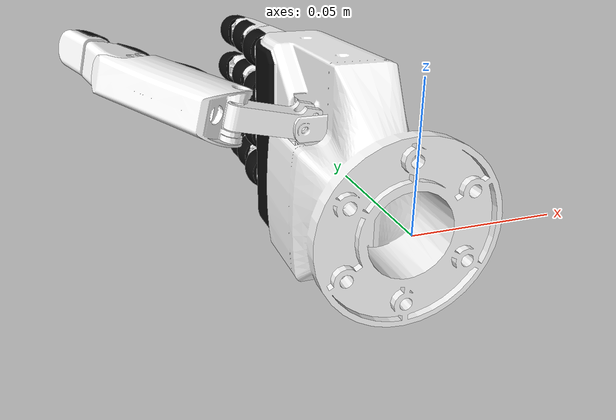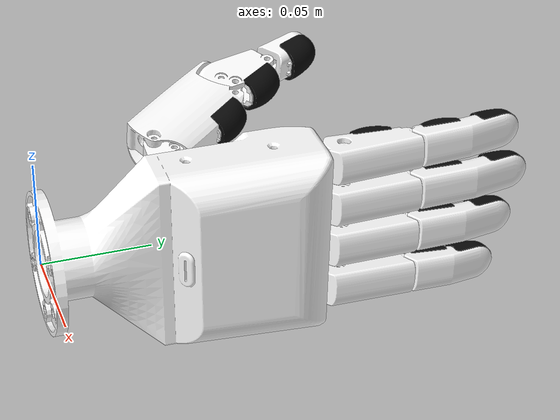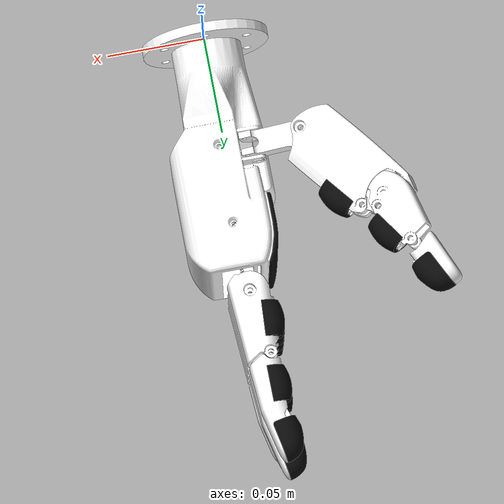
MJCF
<?xml version="1.0" encoding="utf-8"?>
<mujoco model="V3_Hand_Adaptive_Underactuated">
  <compiler angle="radian" meshdir="./" autolimits="true" />
  <option timestep="0.001" iterations="100" solver="Newton"
    cone="elliptic" gravity="0 0 -9.81" />

  <default>
    <joint limited="true" damping="0.002" armature="0.00002"
      frictionloss="0.0002" springref="0" />
    <geom contype="0" conaffinity="0" density="0" />
    <default class="visualgeom">
      <geom contype="0" conaffinity="0" group="1" density="0" />
    </default>
    <default class="padgeom">
      <!-- Bit 1 receives task objects; bit 2 enables collision between skins. -->
      <geom contype="2" conaffinity="3" group="2" density="0" condim="4"
        friction="1.3 0.02 0.0002" solref="0.01 1" priority="1"
        solimp="0.9 0.95 0.001 0.5 2" />
    </default>
  </default>

  <asset>
    <mesh name="v3_base_link" content_type="model/stl" file="meshes/v3_base_link.STL" />

    <mesh name="finger_first_0_p" content_type="model/stl" file="meshes/finger_first_0_p.STL" />
    <mesh name="finger_second_0_p" content_type="model/stl" file="meshes/finger_second_0_p.STL" />
    <mesh name="skin_0_0_p" content_type="model/stl" file="meshes/skin_0_0_p.STL" />
    <mesh name="skin_0_1_p" content_type="model/stl" file="meshes/skin_0_1_p.STL" />
    <mesh name="skin_0_2_p" content_type="model/stl" file="meshes/skin_0_2_p.STL" />

    <mesh name="finger_first_1_p" content_type="model/stl" file="meshes/finger_first_1_p.STL" />
    <mesh name="finger_second_1_p" content_type="model/stl" file="meshes/finger_second_1_p.STL" />
    <mesh name="skin_1_0_p" content_type="model/stl" file="meshes/skin_1_0_p.STL" />
    <mesh name="skin_1_1_p" content_type="model/stl" file="meshes/skin_1_1_p.STL" />
    <mesh name="skin_1_2_p" content_type="model/stl" file="meshes/skin_1_2_p.STL" />

    <mesh name="finger_first_2_p" content_type="model/stl" file="meshes/finger_first_2_p.STL" />
    <mesh name="finger_second_2_p" content_type="model/stl" file="meshes/finger_second_2_p.STL" />
    <mesh name="skin_2_0_p" content_type="model/stl" file="meshes/skin_2_0_p.STL" />
    <mesh name="skin_2_1_p" content_type="model/stl" file="meshes/skin_2_1_p.STL" />
    <mesh name="skin_2_2_p" content_type="model/stl" file="meshes/skin_2_2_p.STL" />

    <mesh name="finger_first_3_p" content_type="model/stl" file="meshes/finger_first_3_p.STL" />
    <mesh name="finger_second_3_p" content_type="model/stl" file="meshes/finger_second_3_p.STL" />
    <mesh name="skin_3_0_p" content_type="model/stl" file="meshes/skin_3_0_p.STL" />
    <mesh name="skin_3_1_p" content_type="model/stl" file="meshes/skin_3_1_p.STL" />
    <mesh name="skin_3_2_p" content_type="model/stl" file="meshes/skin_3_2_p.STL" />

    <mesh name="thumb_rotate_p" content_type="model/stl" file="meshes/thumb_rotate_p.STL" />
    <mesh name="thumb_first_p" content_type="model/stl" file="meshes/thumb_first_p.STL" />
    <mesh name="thumb_second_p" content_type="model/stl" file="meshes/thumb_second_p.STL" />
    <mesh name="thumb_third_p" content_type="model/stl" file="meshes/thumb_third_p.STL" />
    <mesh name="skin_4_0_p" content_type="model/stl" file="meshes/skin_4_0_p.STL" />
    <mesh name="skin_4_1_p" content_type="model/stl" file="meshes/skin_4_1_p.STL" />
    <mesh name="skin_4_2_p" content_type="model/stl" file="meshes/skin_4_2_p.STL" />
    <mesh name="skin_palm_p" content_type="model/stl" file="meshes/skin_palm_p.STL" />
  </asset>

  <worldbody>
    <body name="hand_root" pos="0 0 0" quat="1 0 0 0">
      <geom name="v3_base_link" class="visualgeom" type="mesh"
        mesh="v3_base_link" rgba="1 1 1 1" />
      <geom name="skin_palm_p" class="padgeom" type="mesh"
        pos="-0.01544 0.11121 -0.003" quat="0.000796327 1 0 0"
        mesh="skin_palm_p" rgba="0.04 0.04 0.04 1" />

      <body name="finger_first_0_p" pos="0.002 0.13804 -0.0350749" gravcomp="1"
        quat="0.0214958 0.713766 -0.699737 0.0210733">
        <inertial pos="-0.01153 -0.00242854 -0.00136339"
          quat="0.602872 0.367023 0.67964 0.199822" mass="0.0156128"
          diaginertia="3.07158e-06 2.71909e-06 1.37814e-06" />
        <joint name="finger_first_0_j" axis="0 0 -1" range="-0.08 1.60"
          stiffness="0.030" />
        <geom name="finger_first_0_p" class="visualgeom" type="mesh"
          mesh="finger_first_0_p" rgba="1 1 1 1" />
        <geom name="skin_0_0_p" class="padgeom" type="mesh"
          pos="-0.0157378 0.0119851 0.0001"
          quat="-0.467921 -0.506491 0.493424 -0.530141"
          mesh="skin_0_0_p" rgba="0.04 0.04 0.04 1" />
        <body name="finger_second_0_p" pos="-0.0318983 0.00389251 0" gravcomp="1">
          <inertial pos="-0.0171504 -0.00388346 -0.00482794"
            quat="0.235679 0.688576 0.57471 0.374201" mass="0.0177553"
            diaginertia="5.43551e-06 4.30941e-06 1.69387e-06" />
          <joint name="finger_second_0_j" axis="0 0 -1" range="-0.08 1.75"
            stiffness="0.028" />
          <geom name="finger_second_0_p" class="visualgeom" type="mesh"
            mesh="finger_second_0_p" rgba="1 1 1 1" />
          <geom name="skin_0_1_p" class="padgeom" type="mesh"
            pos="-0.0140028 0.00423085 0.0001"
            quat="-0.476897 -0.494017 0.505912 -0.522082"
            mesh="skin_0_1_p" rgba="0.04 0.04 0.04 1" />
          <geom name="skin_0_2_p" class="padgeom" type="mesh"
            pos="-0.0351717 0.00347781 0.0001"
            quat="-0.462885 -0.51276 0.486905 -0.534545"
            mesh="skin_0_2_p" rgba="0.04 0.04 0.04 1" />
        </body>
      </body>

      <body name="finger_first_1_p" pos="0.002 0.13913 -0.0133252" gravcomp="1"
        quat="0.0143317 0.713946 -0.699913 0.01405">
        <inertial pos="-0.0115079 -0.0024292 -0.00136339"
          quat="0.60245 0.367689 0.679947 0.198826" mass="0.0156128"
          diaginertia="3.07946e-06 2.72925e-06 1.37585e-06" />
        <joint name="finger_first_1_j" axis="0 0 -1" range="-0.08 1.60"
          stiffness="0.030" />
        <geom name="finger_first_1_p" class="visualgeom" type="mesh"
          mesh="finger_first_1_p" rgba="1 1 1 1" />
        <geom name="skin_1_0_p" class="padgeom" type="mesh"
          pos="-0.0157378 0.0119851 0.0001"
          quat="-0.472252 -0.510519 0.489255 -0.526287"
          mesh="skin_1_0_p" rgba="0.04 0.04 0.04 1" />
        <body name="finger_second_1_p" pos="-0.0318983 0.00389251 0" gravcomp="1">
          <inertial pos="-0.0209974 -0.00331111 -0.00499057"
            quat="0.267723 0.685624 0.567941 0.368358" mass="0.0211046"
            diaginertia="8.42322e-06 6.44228e-06 2.64786e-06" />
          <joint name="finger_second_1_j" axis="0 0 -1" range="-0.08 1.75"
            stiffness="0.028" />
          <geom name="finger_second_1_p" class="visualgeom" type="mesh"
            mesh="finger_second_1_p" rgba="1 1 1 1" />
          <geom name="skin_1_1_p" class="padgeom" type="mesh"
            pos="-0.015911 0.0047591 0.0001"
            quat="-0.486323 -0.492747 0.50715 -0.513313"
            mesh="skin_1_1_p" rgba="0.04 0.04 0.04 1" />
          <geom name="skin_1_2_p" class="padgeom" type="mesh"
            pos="-0.0429721 0.00510208 0.0001"
            quat="-0.471191 -0.511737 0.487981 -0.527237"
            mesh="skin_1_2_p" rgba="0.04 0.04 0.04 1" />
        </body>
      </body>

      <body name="finger_first_2_p" pos="0.002 0.13978 0.008442" gravcomp="1"
        quat="0.0071639 0.714069 -0.700004 0.00702743">
        <inertial pos="-0.0114859 -0.00242952 -0.00136338"
          quat="0.602024 0.368358 0.680225 0.197921" mass="0.0156128"
          diaginertia="3.08735e-06 2.73956e-06 1.37344e-06" />
        <joint name="finger_first_2_j" axis="0 0 -1" range="-0.08 1.60"
          stiffness="0.030" />
        <geom name="finger_first_2_p" class="visualgeom" type="mesh"
          mesh="finger_first_2_p" rgba="1 1 1 1" />
        <geom name="skin_2_0_p" class="padgeom" type="mesh"
          pos="-0.0157378 0.0119851 0.0001"
          quat="-0.476551 -0.514513 0.485053 -0.522397"
          mesh="skin_2_0_p" rgba="0.04 0.04 0.04 1" />
        <body name="finger_second_2_p" pos="-0.0318983 0.00389251 0" gravcomp="1">
          <inertial pos="-0.0237824 -0.00325381 -0.00513523"
            quat="0.283806 0.678225 0.567563 0.370591" mass="0.0236069"
            diaginertia="1.13537e-05 8.58574e-06 3.5089e-06" />
          <joint name="finger_second_2_j" axis="0 0 -1" range="-0.08 1.75"
            stiffness="0.028" />
          <geom name="finger_second_2_p" class="visualgeom" type="mesh"
            mesh="finger_second_2_p" rgba="1 1 1 1" />
          <geom name="skin_2_1_p" class="padgeom" type="mesh"
            pos="-0.0179082 0.00481423 0.0001"
            quat="-0.492634 -0.496765 0.503214 -0.507259"
            mesh="skin_2_1_p" rgba="0.04 0.04 0.04 1" />
          <geom name="skin_2_2_p" class="padgeom" type="mesh"
            pos="-0.0489203 0.00557317 0.0001"
            quat="-0.475726 -0.515364 0.484148 -0.523149"
            mesh="skin_2_2_p" rgba="0.04 0.04 0.04 1" />
        </body>
      </body>

      <body name="finger_first_3_p" pos="0.002 0.14 0.030218" gravcomp="1"
        quat="-2.62306e-06 0.714106 -0.700037 2.57138e-06">
        <inertial pos="-0.0114638 -0.00242938 -0.00136355"
          quat="0.601598 0.369029 0.680477 0.197102" mass="0.0156125"
          diaginertia="3.09522e-06 2.74995e-06 1.37088e-06" />
        <joint name="finger_first_3_j" axis="0 0 -1" range="-0.08 1.60"
          stiffness="0.030" />
        <geom name="finger_first_3_p" class="visualgeom" type="mesh"
          mesh="finger_first_3_p" rgba="1 1 1 1" />
        <geom name="skin_3_0_p" class="padgeom" type="mesh"
          pos="-0.0157378 0.0119851 0.0001"
          quat="-0.480818 -0.518473 0.480818 -0.518473"
          mesh="skin_3_0_p" rgba="0.04 0.04 0.04 1" />
        <body name="finger_second_3_p" pos="-0.031898 0.0038925 0" gravcomp="1">
          <inertial pos="-0.0209906 -0.0033276 -0.00499058"
            quat="0.269767 0.684699 0.568543 0.367657" mass="0.0211046"
            diaginertia="8.42709e-06 6.44326e-06 2.65041e-06" />
          <joint name="finger_second_3_j" axis="0 0 -1" range="-0.08 1.75"
            stiffness="0.028" />
          <geom name="finger_second_3_p" class="visualgeom" type="mesh"
            mesh="finger_second_3_p" rgba="1 1 1 1" />
          <geom name="skin_3_1_p" class="padgeom" type="mesh"
            pos="-0.0159111 0.00475913 0.0001"
            quat="-0.496831 -0.503149 0.496831 -0.503149"
            mesh="skin_3_1_p" rgba="0.04 0.04 0.04 1" />
          <geom name="skin_3_2_p" class="padgeom" type="mesh"
            pos="-0.0429721 0.00510208 0.0001"
            quat="-0.479649 -0.519555 0.479649 -0.519555"
            mesh="skin_3_2_p" rgba="0.04 0.04 0.04 1" />
        </body>
      </body>

      <body name="thumb_rotate_p" pos="-0.015 0.0636 0.018118" gravcomp="1"
        quat="0.707105 0.707108 0 0">
        <inertial pos="0.0051139 0.00448309 0.0001" mass="0.000176615"
          diaginertia="2.18598e-09 2.18598e-09 1.37908e-10" />
        <joint name="thumb_rotate_j" axis="0 0 1" range="-0.90 0.55"
          stiffness="0.025" damping="0.001" />
        <geom name="thumb_rotate_p" class="visualgeom" type="mesh"
          mesh="thumb_rotate_p" rgba="1 1 1 1" />

        <body name="thumb_first_p" pos="-0.0248548 0.00577022 0.00127" gravcomp="1"
          quat="0.638758 0.689899 0.155045 -0.303295">
          <inertial pos="0.00383913 -0.0237823 0.00180771"
            quat="0.489331 0.350115 -0.704242 0.376853" mass="0.0210687"
            diaginertia="1.17542e-05 7.58051e-06 5.32361e-06" />
          <joint name="thumb_first_j" axis="0 0 1" range="-0.08 1.00"
            stiffness="0.050" />
          <geom name="thumb_first_p" class="visualgeom" type="mesh"
            mesh="thumb_first_p" rgba="1 1 1 1" />
          <geom name="skin_4_0_p" class="padgeom" type="mesh"
            pos="0.0200317 -0.0367688 -0.0001" quat="0.5 0.5 -0.5 -0.5"
            mesh="skin_4_0_p" rgba="0.04 0.04 0.04 1" />

          <body name="thumb_second_p" pos="0.00538619 -0.0565 0" gravcomp="1">
            <inertial pos="-0.00233836 -0.00709252 0.00194151"
              quat="-0.208014 0.456839 -0.0195905 0.864664" mass="0.0125436"
              diaginertia="2.32459e-06 1.7898e-06 1.50652e-06" />
            <joint name="thumb_second_j" axis="0 0 1" range="-0.08 1.05"
              stiffness="0.040" />
            <geom name="thumb_second_p" class="visualgeom" type="mesh"
              mesh="thumb_second_p" rgba="1 1 1 1" />
            <geom name="skin_4_1_p" class="padgeom" type="mesh"
              pos="0.0120659 -0.0106684 -0.0001"
              quat="0.516981 0.516981 -0.482422 -0.482422"
              mesh="skin_4_1_p" rgba="0.04 0.04 0.04 1" />

            <body name="thumb_third_p" pos="0.00212065 -0.0233881 0" gravcomp="1">
              <inertial pos="0.000593211 -0.00931824 0.002676"
                quat="0.541923 0.778236 0.271911 -0.163501" mass="0.0111163"
                diaginertia="3.14755e-06 3.10704e-06 5.28278e-07" />
              <joint name="thumb_third_j" axis="0 0 1" range="-0.08 1.10"
                stiffness="0.035" />
              <geom name="thumb_third_p" class="visualgeom" type="mesh"
                mesh="thumb_third_p" rgba="1 1 1 1" />
              <geom name="skin_4_2_p" class="padgeom" type="mesh"
                pos="0.0109191 -0.0187755 -0.0001"
                quat="0.48883 0.48883 -0.510926 -0.510926"
                mesh="skin_4_2_p" rgba="0.04 0.04 0.04 1" />
            </body>
          </body>
        </body>
      </body>
    </body>
  </worldbody>

  <contact>
    <!--
      All skin geoms collide through their masks.  These explicit pairs tune
      common opposition and fist-stop contacts without disabling other skin
      combinations.
    -->
    <pair geom1="skin_3_0_p" geom2="skin_4_0_p" condim="3"
      friction="0.25 0.25 0.002 0.0001 0.0001" solref="0.01 1"
      solimp="0.9 0.95 0.001 0.5 2" />
    <pair geom1="skin_3_0_p" geom2="skin_4_1_p" condim="3"
      friction="0.25 0.25 0.002 0.0001 0.0001" solref="0.01 1"
      solimp="0.9 0.95 0.001 0.5 2" />
    <pair geom1="skin_3_0_p" geom2="skin_4_2_p" condim="3"
      friction="0.25 0.25 0.002 0.0001 0.0001" solref="0.01 1"
      solimp="0.9 0.95 0.001 0.5 2" />
    <pair geom1="skin_3_1_p" geom2="skin_4_0_p" condim="3"
      friction="0.25 0.25 0.002 0.0001 0.0001" solref="0.01 1"
      solimp="0.9 0.95 0.001 0.5 2" />
    <pair geom1="skin_3_1_p" geom2="skin_4_1_p" condim="3"
      friction="0.25 0.25 0.002 0.0001 0.0001" solref="0.01 1"
      solimp="0.9 0.95 0.001 0.5 2" />
    <pair geom1="skin_3_1_p" geom2="skin_4_2_p" condim="3"
      friction="0.25 0.25 0.002 0.0001 0.0001" solref="0.01 1"
      solimp="0.9 0.95 0.001 0.5 2" />
    <pair geom1="skin_3_2_p" geom2="skin_4_0_p" condim="3"
      friction="0.25 0.25 0.002 0.0001 0.0001" solref="0.01 1"
      solimp="0.9 0.95 0.001 0.5 2" />
    <pair geom1="skin_3_2_p" geom2="skin_4_1_p" condim="3"
      friction="0.25 0.25 0.002 0.0001 0.0001" solref="0.01 1"
      solimp="0.9 0.95 0.001 0.5 2" />
    <pair geom1="skin_3_2_p" geom2="skin_4_2_p" condim="3"
      friction="0.25 0.25 0.002 0.0001 0.0001" solref="0.01 1"
      solimp="0.9 0.95 0.001 0.5 2" />
    <pair geom1="skin_2_0_p" geom2="skin_4_0_p" condim="3"
      friction="0.25 0.25 0.002 0.0001 0.0001" solref="0.01 1"
      solimp="0.9 0.95 0.001 0.5 2" />
    <pair geom1="skin_2_0_p" geom2="skin_4_1_p" condim="3"
      friction="0.25 0.25 0.002 0.0001 0.0001" solref="0.01 1"
      solimp="0.9 0.95 0.001 0.5 2" />
    <pair geom1="skin_2_0_p" geom2="skin_4_2_p" condim="3"
      friction="0.25 0.25 0.002 0.0001 0.0001" solref="0.01 1"
      solimp="0.9 0.95 0.001 0.5 2" />
    <pair geom1="skin_2_1_p" geom2="skin_4_0_p" condim="3"
      friction="0.25 0.25 0.002 0.0001 0.0001" solref="0.01 1"
      solimp="0.9 0.95 0.001 0.5 2" />
    <pair geom1="skin_2_1_p" geom2="skin_4_1_p" condim="3"
      friction="0.25 0.25 0.002 0.0001 0.0001" solref="0.01 1"
      solimp="0.9 0.95 0.001 0.5 2" />
    <pair geom1="skin_2_1_p" geom2="skin_4_2_p" condim="3"
      friction="0.25 0.25 0.002 0.0001 0.0001" solref="0.01 1"
      solimp="0.9 0.95 0.001 0.5 2" />
    <pair geom1="skin_2_2_p" geom2="skin_4_0_p" condim="3"
      friction="0.25 0.25 0.002 0.0001 0.0001" solref="0.01 1"
      solimp="0.9 0.95 0.001 0.5 2" />
    <pair geom1="skin_2_2_p" geom2="skin_4_1_p" condim="3"
      friction="0.25 0.25 0.002 0.0001 0.0001" solref="0.01 1"
      solimp="0.9 0.95 0.001 0.5 2" />
    <pair geom1="skin_2_2_p" geom2="skin_4_2_p" condim="3"
      friction="0.25 0.25 0.002 0.0001 0.0001" solref="0.01 1"
      solimp="0.9 0.95 0.001 0.5 2" />
    <!-- Palm contact forms a physical fist stop without a high-friction lock. -->
    <pair geom1="skin_palm_p" geom2="skin_0_0_p" condim="3"
      friction="0.20 0.20 0.002 0.0001 0.0001" solref="0.015 1"
      solimp="0.9 0.95 0.001 0.5 2" />
    <pair geom1="skin_palm_p" geom2="skin_1_0_p" condim="3"
      friction="0.20 0.20 0.002 0.0001 0.0001" solref="0.015 1"
      solimp="0.9 0.95 0.001 0.5 2" />
    <pair geom1="skin_palm_p" geom2="skin_2_0_p" condim="3"
      friction="0.20 0.20 0.002 0.0001 0.0001" solref="0.015 1"
      solimp="0.9 0.95 0.001 0.5 2" />
    <pair geom1="skin_palm_p" geom2="skin_3_0_p" condim="3"
      friction="0.20 0.20 0.002 0.0001 0.0001" solref="0.015 1"
      solimp="0.9 0.95 0.001 0.5 2" />
  </contact>

  <tendon>
    <fixed name="finger_0_flexor">
      <joint joint="finger_first_0_j" coef="0.003" />
      <joint joint="finger_second_0_j" coef="0.003" />
    </fixed>
    <fixed name="finger_1_flexor">
      <joint joint="finger_first_1_j" coef="0.003" />
      <joint joint="finger_second_1_j" coef="0.003" />
    </fixed>
    <fixed name="finger_2_flexor">
      <joint joint="finger_first_2_j" coef="0.003" />
      <joint joint="finger_second_2_j" coef="0.003" />
    </fixed>
    <fixed name="finger_3_flexor">
      <joint joint="finger_first_3_j" coef="0.003" />
      <joint joint="finger_second_3_j" coef="0.003" />
    </fixed>
    <fixed name="thumb_opposition">
      <joint joint="thumb_rotate_j" coef="0.0085" />
    </fixed>
    <fixed name="thumb_flexor">
      <joint joint="thumb_first_j" coef="0.0035" />
      <joint joint="thumb_second_j" coef="0.004" />
      <joint joint="thumb_third_j" coef="0.004" />
    </fixed>
  </tendon>

  <actuator>
    <position name="act_push_0_j" tendon="finger_0_flexor" ctrlrange="0 0.01"
      kp="10000" dampratio="1" forcelimited="true" forcerange="-20 20" />
    <position name="act_push_1_j" tendon="finger_1_flexor" ctrlrange="0 0.01"
      kp="10000" dampratio="1" forcelimited="true" forcerange="-20 20" />
    <position name="act_push_2_j" tendon="finger_2_flexor" ctrlrange="0 0.01"
      kp="10000" dampratio="1" forcelimited="true" forcerange="-20 20" />
    <position name="act_push_3_j" tendon="finger_3_flexor" ctrlrange="0 0.01"
      kp="10000" dampratio="1" forcelimited="true" forcerange="-20 20" />
    <position name="thumb_rotate_act_push_j" tendon="thumb_opposition"
      ctrlrange="-0.0069 0.004" kp="4000" dampratio="1"
      forcelimited="true" forcerange="-20 20" />
    <position name="thumb_grasp_act_push_j" tendon="thumb_flexor" ctrlrange="0 0.01"
      kp="4000" dampratio="1" forcelimited="true" forcerange="-20 20" />
  </actuator>

  <sensor>
    <actuatorpos name="act_push_0_j_p" actuator="act_push_0_j" />
    <actuatorvel name="act_push_0_j_v" actuator="act_push_0_j" />
    <actuatorfrc name="act_push_0_j_f" actuator="act_push_0_j" noise="0.001" />
    <actuatorpos name="act_push_1_j_p" actuator="act_push_1_j" />
    <actuatorvel name="act_push_1_j_v" actuator="act_push_1_j" />
    <actuatorfrc name="act_push_1_j_f" actuator="act_push_1_j" noise="0.001" />
    <actuatorpos name="act_push_2_j_p" actuator="act_push_2_j" />
    <actuatorvel name="act_push_2_j_v" actuator="act_push_2_j" />
    <actuatorfrc name="act_push_2_j_f" actuator="act_push_2_j" noise="0.001" />
    <actuatorpos name="act_push_3_j_p" actuator="act_push_3_j" />
    <actuatorvel name="act_push_3_j_v" actuator="act_push_3_j" />
    <actuatorfrc name="act_push_3_j_f" actuator="act_push_3_j" noise="0.001" />
    <actuatorpos name="thumb_rotate_act_push_j_p" actuator="thumb_rotate_act_push_j" />
    <actuatorvel name="thumb_rotate_act_push_j_v" actuator="thumb_rotate_act_push_j" />
    <actuatorfrc name="thumb_rotate_act_push_j_f" actuator="thumb_rotate_act_push_j" noise="0.001" />
    <actuatorpos name="thumb_grasp_act_push_j_p" actuator="thumb_grasp_act_push_j" />
    <actuatorvel name="thumb_grasp_act_push_j_v" actuator="thumb_grasp_act_push_j" />
    <actuatorfrc name="thumb_grasp_act_push_j_f" actuator="thumb_grasp_act_push_j" noise="0.001" />
  </sensor>
</mujoco>
